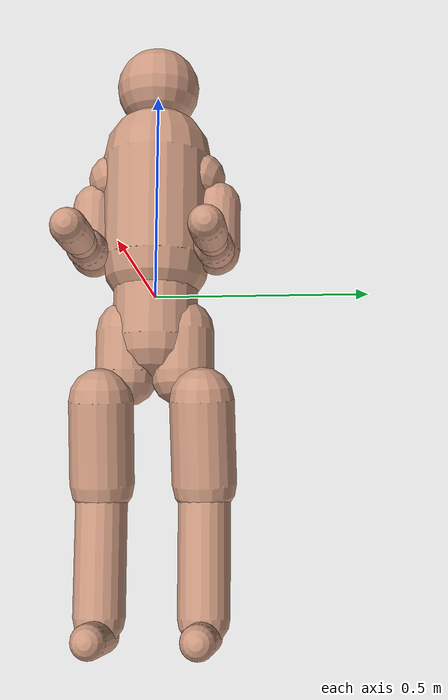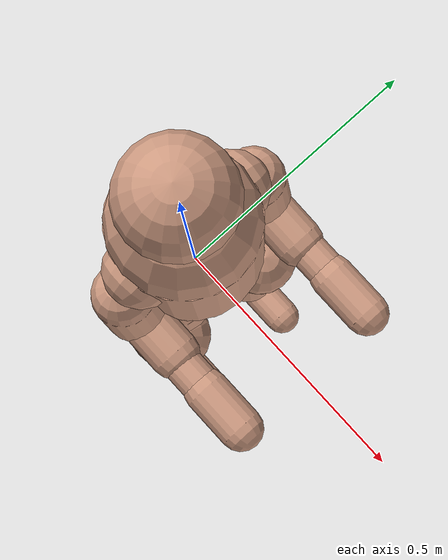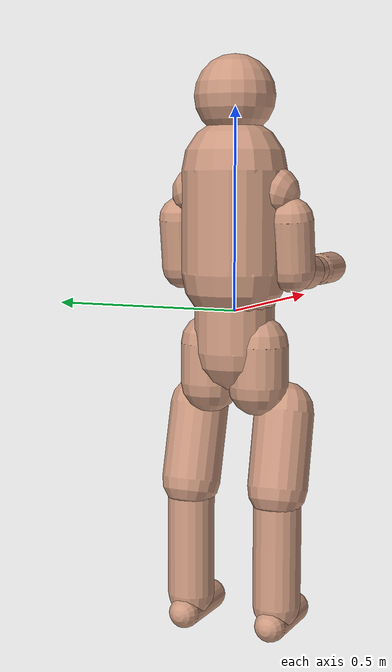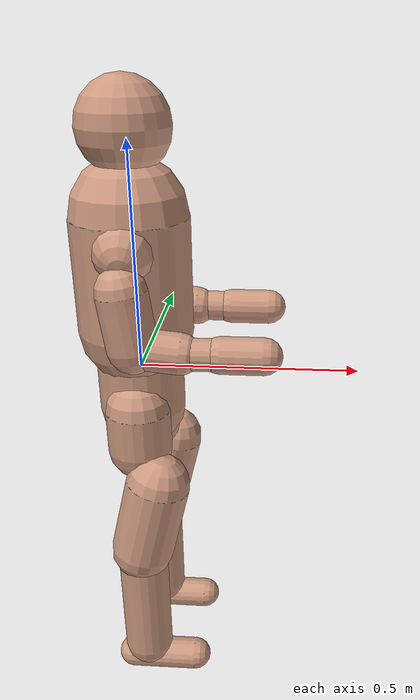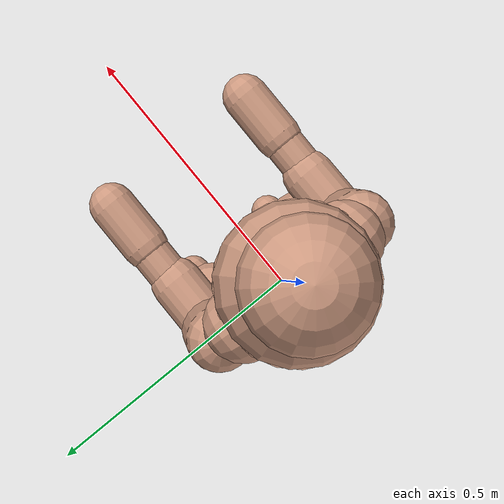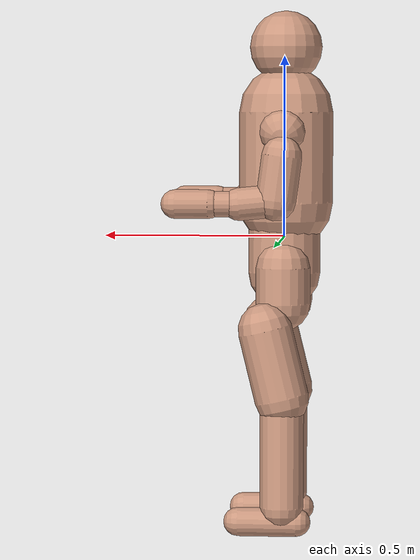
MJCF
<?xml version='1.0' encoding='utf-8'?>
<mujoco model="g1_human_body_view">
  <default>
    <default class="human">
      <joint damping="50" armature="0.01"/>
      <geom type="capsule" condim="3" friction="1 0.5 0.001" density="1000"/>
    </default>
    <default class="human_collision">
      <geom type="capsule" solref="0.02 1.0" solimp="0.9 0.95 0.001" group="0" contype="2" conaffinity="4" rgba="0.8 0.6 0.5 1.0"/>
    </default>
    <default class="position_actuator">
      <position kp="200" kv="20"/>
    </default>
  </default>
  <worldbody><body name="Pelvis" pos="0 0 0" mocap="true">
      <inertial pos="0 0 -0.07605" quat="1 0 -0.000399148 0" mass="3.813" diaginertia="0.010549 0.0093089 0.0079184"/>
      <body name="left_hip_pitch_link" pos="0 0.064452 -0.1027">
        <inertial pos="0.002741 0.047791 -0.02606" quat="0.954862 0.293964 0.0302556 0.030122" mass="1.35" diaginertia="0.00181517 0.00153422 0.00116212"/>
        <joint name="left_hip_pitch_joint" axis="0 1 0" range="-2.5307 2.8798" actuatorfrcrange="-88 88" class="human"/>
        <body name="left_hip_roll_link" pos="0 0.052 -0.030465" quat="0.996179 0 -0.0873386 0">
          <inertial pos="0.029812 -0.001045 -0.087934" quat="0.977808 -1.97119e-05 0.205576 -0.0403793" mass="1.52" diaginertia="0.00254986 0.00241169 0.00148755"/>
          <joint name="left_hip_roll_joint" axis="1 0 0" range="-0.5236 2.9671" actuatorfrcrange="-139 139" class="human"/>
          <body name="left_hip_yaw_link" pos="0.025001 0 -0.12412">
            <inertial pos="-0.057709 -0.010981 -0.15078" quat="0.600598 0.15832 0.223482 0.751181" mass="1.702" diaginertia="0.00776166 0.00717575 0.00160139"/>
            <joint name="left_hip_yaw_joint" axis="0 0 1" range="-2.7576 2.7576" actuatorfrcrange="-88 88" class="human"/>
            <body name="left_knee_link" pos="-0.078273 0.0021489 -0.17734" quat="0.996179 0 0.0873386 0">
              <inertial pos="0.005457 0.003964 -0.12074" quat="0.923418 -0.0327699 0.0158246 0.382067" mass="1.932" diaginertia="0.0113804 0.0112778 0.00146458"/>
              <joint name="left_knee_joint" axis="0 1 0" range="-0.087267 2.8798" actuatorfrcrange="-139 139" class="human"/>
              <body name="left_ankle_pitch_link" pos="0 -9.4445e-05 -0.30001">
                <inertial pos="-0.007269 0 0.011137" quat="0.603053 0.369225 0.369225 0.603053" mass="0.074" diaginertia="1.89e-05 1.40805e-05 6.9195e-06"/>
                <joint name="left_ankle_pitch_joint" axis="0 1 0" range="-0.87267 0.5236" actuatorfrcrange="-50 50" class="human"/>
                <body name="left_ankle_roll_link" pos="0 0 -0.017558">
                  <inertial pos="0.026505 0 -0.016425" quat="-0.000481092 0.728482 -0.000618967 0.685065" mass="0.608" diaginertia="0.00167218 0.0016161 0.000217621"/>
                  <joint name="left_ankle_roll_joint" axis="1 0 0" range="-0.2618 0.2618" actuatorfrcrange="-50 50" class="human"/>
                  <geom name="L_Foot_col" class="human_collision" fromto="-0.04 0 -0.025  0.12 0 -0.025" size="0.04"/></body>
              </body>
            <geom name="L_Shin_col" class="human_collision" fromto="0 0 0  0 0 -0.30" size="0.06"/></body>
          <geom name="L_Thigh_col" class="human_collision" fromto="0 0 0  -0.078 0.002 -0.177" size="0.075"/></body>
        </body>
      <geom name="L_Hip_col" class="human_collision" fromto="0 0 0.02  0 0 -0.08" size="0.075"/></body>
      <body name="right_hip_pitch_link" pos="0 -0.064452 -0.1027">
        <inertial pos="0.002741 -0.047791 -0.02606" quat="0.954862 -0.293964 0.0302556 -0.030122" mass="1.35" diaginertia="0.00181517 0.00153422 0.00116212"/>
        <joint name="right_hip_pitch_joint" axis="0 1 0" range="-2.5307 2.8798" actuatorfrcrange="-88 88" class="human"/>
        <body name="right_hip_roll_link" pos="0 -0.052 -0.030465" quat="0.996179 0 -0.0873386 0">
          <inertial pos="0.029812 0.001045 -0.087934" quat="0.977808 1.97119e-05 0.205576 0.0403793" mass="1.52" diaginertia="0.00254986 0.00241169 0.00148755"/>
          <joint name="right_hip_roll_joint" axis="1 0 0" range="-2.9671 0.5236" actuatorfrcrange="-139 139" class="human"/>
          <body name="right_hip_yaw_link" pos="0.025001 0 -0.12412">
            <inertial pos="-0.057709 0.010981 -0.15078" quat="0.751181 0.223482 0.15832 0.600598" mass="1.702" diaginertia="0.00776166 0.00717575 0.00160139"/>
            <joint name="right_hip_yaw_joint" axis="0 0 1" range="-2.7576 2.7576" actuatorfrcrange="-88 88" class="human"/>
            <body name="right_knee_link" pos="-0.078273 -0.0021489 -0.17734" quat="0.996179 0 0.0873386 0">
              <inertial pos="0.005457 -0.003964 -0.12074" quat="0.923439 0.0345276 0.0116333 -0.382012" mass="1.932" diaginertia="0.011374 0.0112843 0.00146452"/>
              <joint name="right_knee_joint" axis="0 1 0" range="-0.087267 2.8798" actuatorfrcrange="-139 139" class="human"/>
              <body name="right_ankle_pitch_link" pos="0 9.4445e-05 -0.30001">
                <inertial pos="-0.007269 0 0.011137" quat="0.603053 0.369225 0.369225 0.603053" mass="0.074" diaginertia="1.89e-05 1.40805e-05 6.9195e-06"/>
                <joint name="right_ankle_pitch_joint" axis="0 1 0" range="-0.87267 0.5236" actuatorfrcrange="-50 50" class="human"/>
                <body name="right_ankle_roll_link" pos="0 0 -0.017558">
                  <inertial pos="0.026505 0 -0.016425" quat="0.000481092 0.728482 0.000618967 0.685065" mass="0.608" diaginertia="0.00167218 0.0016161 0.000217621"/>
                  <joint name="right_ankle_roll_joint" axis="1 0 0" range="-0.2618 0.2618" actuatorfrcrange="-50 50" class="human"/>
                  <geom name="R_Foot_col" class="human_collision" fromto="-0.04 0 -0.025  0.12 0 -0.025" size="0.04"/></body>
              </body>
            <geom name="R_Shin_col" class="human_collision" fromto="0 0 0  0 0 -0.30" size="0.06"/></body>
          <geom name="R_Thigh_col" class="human_collision" fromto="0 0 0  -0.078 -0.002 -0.177" size="0.075"/></body>
        </body>
      <geom name="R_Hip_col" class="human_collision" fromto="0 0 0.02  0 0 -0.08" size="0.075"/></body>
      <body name="waist_yaw_link">
        <inertial pos="0.003494 0.000233 0.018034" quat="0.289697 0.591001 -0.337795 0.672821" mass="0.214" diaginertia="0.000163531 0.000107714 0.000102205"/>
        <joint name="waist_yaw_joint" axis="0 0 1" range="-2.618 2.618" actuatorfrcrange="-88 88" class="human"/>
        <body name="waist_roll_link" pos="-0.0039635 0 0.044">
          <inertial pos="0 2.3e-05 0" quat="0.5 0.5 -0.5 0.5" mass="0.086" diaginertia="8.245e-06 7.079e-06 6.339e-06"/>
          <joint name="waist_roll_joint" axis="1 0 0" range="-0.52 0.52" actuatorfrcrange="-50 50" class="human"/>
          <body name="torso_link">
            <inertial pos="0.00203158 0.000339683 0.184568" quat="0.999803 -6.03319e-05 0.0198256 0.00131986" mass="7.818" diaginertia="0.121847 0.109825 0.0273735"/>
            <joint name="waist_pitch_joint" axis="0 1 0" range="-0.52 0.52" actuatorfrcrange="-50 50" class="human"/>
            <body name="left_shoulder_pitch_link" pos="0.0039563 0.10022 0.24778" quat="0.990264 0.139201 1.38722e-05 -9.86868e-05">
              <inertial pos="0 0.035892 -0.011628" quat="0.654152 0.0130458 -0.326267 0.68225" mass="0.718" diaginertia="0.000465864 0.000432842 0.000406394"/>
              <joint name="left_shoulder_pitch_joint" axis="0 1 0" range="-3.0892 2.6704" actuatorfrcrange="-25 25" class="human"/>
              <body name="left_shoulder_roll_link" pos="0 0.038 -0.013831" quat="0.990268 -0.139172 0 0">
                <inertial pos="-0.000227 0.00727 -0.063243" quat="0.701256 -0.0196223 -0.00710317 0.712604" mass="0.643" diaginertia="0.000691311 0.000618011 0.000388977"/>
                <joint name="left_shoulder_roll_joint" axis="1 0 0" range="-1.5882 2.2515" actuatorfrcrange="-25 25" class="human"/>
                <body name="left_shoulder_yaw_link" pos="0 0.00624 -0.1032">
                  <inertial pos="0.010773 -0.002949 -0.072009" quat="0.716879 -0.0964829 -0.0679942 0.687134" mass="0.734" diaginertia="0.00106187 0.00103217 0.000400661"/>
                  <joint name="left_shoulder_yaw_joint" axis="0 0 1" range="-2.618 2.618" actuatorfrcrange="-25 25" class="human"/>
                  <body name="left_elbow_link" pos="0.015783 0 -0.080518">
                    <inertial pos="0.064956 0.004454 -0.010062" quat="0.541765 0.636132 0.388821 0.388129" mass="0.6" diaginertia="0.000443035 0.000421612 0.000259353"/>
                    <joint name="left_elbow_joint" axis="0 1 0" range="-1.0472 2.0944" actuatorfrcrange="-25 25" class="human"/>
                    <body name="left_wrist_roll_link" pos="0.1 0.00188791 -0.01">
                      <inertial pos="0.0171394 0.000537591 4.8864e-07" quat="0.575338 0.411667 -0.574906 0.411094" mass="0.085445" diaginertia="5.48211e-05 4.96646e-05 3.57798e-05"/>
                      <joint name="left_wrist_roll_joint" axis="1 0 0" range="-1.97222 1.97222" actuatorfrcrange="-25 25" class="human"/>
                      <body name="left_wrist_pitch_link" pos="0.038 0 0">
                        <inertial pos="0.0229999 -0.00111685 -0.00111658" quat="0.249998 0.661363 0.293036 0.643608" mass="0.48405" diaginertia="0.000430353 0.000429873 0.000164648"/>
                        <joint name="left_wrist_pitch_joint" axis="0 1 0" range="-1.61443 1.61443" actuatorfrcrange="-5 5" class="human"/>
                        <body name="left_wrist_yaw_link" pos="0.046 0 0">
                          <inertial pos="0.0708244 0.000191745 0.00161742" quat="0.510571 0.526295 0.468078 0.493188" mass="0.254576" diaginertia="0.000646113 0.000559993 0.000147566"/>
                          <joint name="left_wrist_yaw_joint" axis="0 0 1" range="-1.61443 1.61443" actuatorfrcrange="-5 5" class="human"/>
                          <geom name="L_Hand_col" class="human_collision" fromto="0 0 0  0.09 0 0" size="0.040"/></body>
                      </body>
                    <geom name="L_Wrist_col" class="human_collision" fromto="0 0 0  0.084 0 0" size="0.035"/></body>
                  <geom name="L_Elbow_col" class="human_collision" fromto="0 0 0  0.10 0 -0.01" size="0.045"/></body>
                <geom name="L_Shoulder_col" class="human_collision" fromto="0 0 0.04  0.016 0 -0.081" size="0.055"/></body>
              </body>
            </body>
            <body name="right_shoulder_pitch_link" pos="0.0039563 -0.10021 0.24778" quat="0.990264 -0.139201 1.38722e-05 9.86868e-05">
              <inertial pos="0 -0.035892 -0.011628" quat="0.68225 -0.326267 0.0130458 0.654152" mass="0.718" diaginertia="0.000465864 0.000432842 0.000406394"/>
              <joint name="right_shoulder_pitch_joint" axis="0 1 0" range="-3.0892 2.6704" actuatorfrcrange="-25 25" class="human"/>
              <body name="right_shoulder_roll_link" pos="0 -0.038 -0.013831" quat="0.990268 0.139172 0 0">
                <inertial pos="-0.000227 -0.00727 -0.063243" quat="0.712604 -0.00710317 -0.0196223 0.701256" mass="0.643" diaginertia="0.000691311 0.000618011 0.000388977"/>
                <joint name="right_shoulder_roll_joint" axis="1 0 0" range="-2.2515 1.5882" actuatorfrcrange="-25 25" class="human"/>
                <body name="right_shoulder_yaw_link" pos="0 -0.00624 -0.1032">
                  <inertial pos="0.010773 0.002949 -0.072009" quat="0.687134 -0.0679942 -0.0964829 0.716879" mass="0.734" diaginertia="0.00106187 0.00103217 0.000400661"/>
                  <joint name="right_shoulder_yaw_joint" axis="0 0 1" range="-2.618 2.618" actuatorfrcrange="-25 25" class="human"/>
                  <body name="right_elbow_link" pos="0.015783 0 -0.080518">
                    <inertial pos="0.064956 -0.004454 -0.010062" quat="0.388129 0.388821 0.636132 0.541765" mass="0.6" diaginertia="0.000443035 0.000421612 0.000259353"/>
                    <joint name="right_elbow_joint" axis="0 1 0" range="-1.0472 2.0944" actuatorfrcrange="-25 25" class="human"/>
                    <body name="right_wrist_roll_link" pos="0.1 -0.00188791 -0.01">
                      <inertial pos="0.0171394 -0.000537591 4.8864e-07" quat="0.411667 0.575338 -0.411094 0.574906" mass="0.085445" diaginertia="5.48211e-05 4.96646e-05 3.57798e-05"/>
                      <joint name="right_wrist_roll_joint" axis="1 0 0" range="-1.97222 1.97222" actuatorfrcrange="-25 25" class="human"/>
                      <body name="right_wrist_pitch_link" pos="0.038 0 0">
                        <inertial pos="0.0229999 0.00111685 -0.00111658" quat="0.643608 0.293036 0.661363 0.249998" mass="0.48405" diaginertia="0.000430353 0.000429873 0.000164648"/>
                        <joint name="right_wrist_pitch_joint" axis="0 1 0" range="-1.61443 1.61443" actuatorfrcrange="-5 5" class="human"/>
                        <body name="right_wrist_yaw_link" pos="0.046 0 0">
                          <inertial pos="0.0708244 -0.000191745 0.00161742" quat="0.493188 0.468078 0.526295 0.510571" mass="0.254576" diaginertia="0.000646113 0.000559993 0.000147566"/>
                          <joint name="right_wrist_yaw_joint" axis="0 0 1" range="-1.61443 1.61443" actuatorfrcrange="-5 5" class="human"/>
                          <geom name="R_Hand_col" class="human_collision" fromto="0 0 0  0.09 0 0" size="0.040"/></body>
                      </body>
                    <geom name="R_Wrist_col" class="human_collision" fromto="0 0 0  0.084 0 0" size="0.035"/></body>
                  <geom name="R_Elbow_col" class="human_collision" fromto="0 0 0  0.10 0 -0.01" size="0.045"/></body>
                <geom name="R_Shoulder_col" class="human_collision" fromto="0 0 0.04  0.016 0 -0.081" size="0.055"/></body>
              </body>
            </body>
          <geom name="Chest_col" class="human_collision" fromto="0 0 0.05  0 0 0.30" size="0.13"/><geom name="Head_col" class="human_collision" pos="0 0 0.48" size="0.10" type="sphere"/><geom name="L_Thorax_col" class="human_collision" fromto="0 0.00 0.28  0.004 0.10 0.248" size="0.065"/><geom name="R_Thorax_col" class="human_collision" fromto="0 0.00 0.28  0.004 -0.10 0.248" size="0.065"/></body>
        </body>
      <geom name="Spine_col" class="human_collision" fromto="0 0 0  0 0 0.10" size="0.08"/></body>
    <geom name="Pelvis_col" class="human_collision" fromto="0 0 0.02  0 0 -0.10" size="0.10"/></body>
  </worldbody>
  <actuator>
    <position name="act_left_hip_pitch_joint" joint="left_hip_pitch_joint" class="position_actuator"/>
    <position name="act_left_hip_roll_joint" joint="left_hip_roll_joint" class="position_actuator"/>
    <position name="act_left_hip_yaw_joint" joint="left_hip_yaw_joint" class="position_actuator"/>
    <position name="act_left_knee_joint" joint="left_knee_joint" class="position_actuator"/>
    <position name="act_left_ankle_pitch_joint" joint="left_ankle_pitch_joint" class="position_actuator"/>
    <position name="act_left_ankle_roll_joint" joint="left_ankle_roll_joint" class="position_actuator"/>
    <position name="act_right_hip_pitch_joint" joint="right_hip_pitch_joint" class="position_actuator"/>
    <position name="act_right_hip_roll_joint" joint="right_hip_roll_joint" class="position_actuator"/>
    <position name="act_right_hip_yaw_joint" joint="right_hip_yaw_joint" class="position_actuator"/>
    <position name="act_right_knee_joint" joint="right_knee_joint" class="position_actuator"/>
    <position name="act_right_ankle_pitch_joint" joint="right_ankle_pitch_joint" class="position_actuator"/>
    <position name="act_right_ankle_roll_joint" joint="right_ankle_roll_joint" class="position_actuator"/>
    <position name="act_waist_yaw_joint" joint="waist_yaw_joint" class="position_actuator"/>
    <position name="act_waist_roll_joint" joint="waist_roll_joint" class="position_actuator"/>
    <position name="act_waist_pitch_joint" joint="waist_pitch_joint" class="position_actuator"/>
    <position name="act_left_shoulder_pitch_joint" joint="left_shoulder_pitch_joint" class="position_actuator"/>
    <position name="act_left_shoulder_roll_joint" joint="left_shoulder_roll_joint" class="position_actuator"/>
    <position name="act_left_shoulder_yaw_joint" joint="left_shoulder_yaw_joint" class="position_actuator"/>
    <position name="act_left_elbow_joint" joint="left_elbow_joint" class="position_actuator"/>
    <position name="act_left_wrist_roll_joint" joint="left_wrist_roll_joint" class="position_actuator"/>
    <position name="act_left_wrist_pitch_joint" joint="left_wrist_pitch_joint" class="position_actuator"/>
    <position name="act_left_wrist_yaw_joint" joint="left_wrist_yaw_joint" class="position_actuator"/>
    <position name="act_right_shoulder_pitch_joint" joint="right_shoulder_pitch_joint" class="position_actuator"/>
    <position name="act_right_shoulder_roll_joint" joint="right_shoulder_roll_joint" class="position_actuator"/>
    <position name="act_right_shoulder_yaw_joint" joint="right_shoulder_yaw_joint" class="position_actuator"/>
    <position name="act_right_elbow_joint" joint="right_elbow_joint" class="position_actuator"/>
    <position name="act_right_wrist_roll_joint" joint="right_wrist_roll_joint" class="position_actuator"/>
    <position name="act_right_wrist_pitch_joint" joint="right_wrist_pitch_joint" class="position_actuator"/>
    <position name="act_right_wrist_yaw_joint" joint="right_wrist_yaw_joint" class="position_actuator"/>
  </actuator>
</mujoco>
